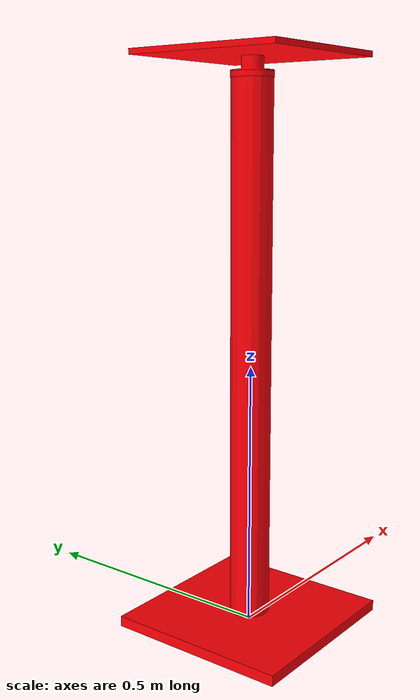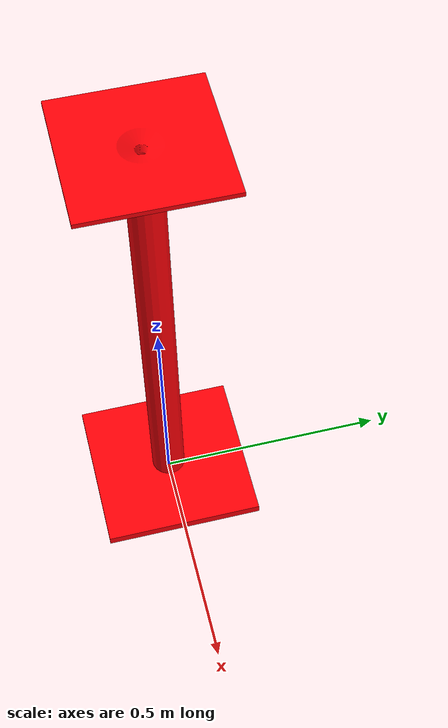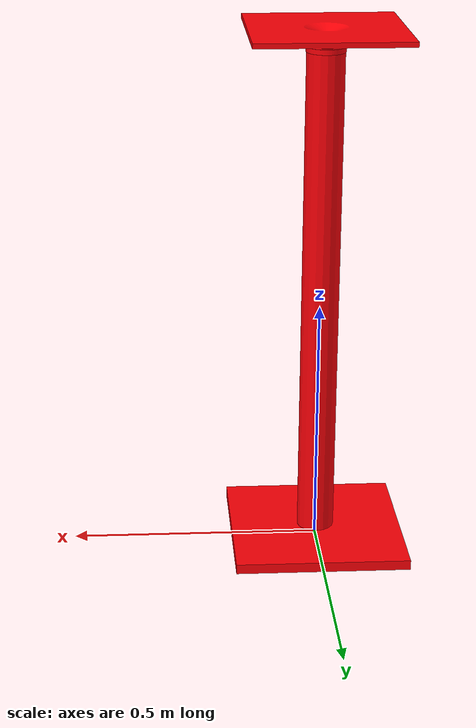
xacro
<?xml version="1.0"?>

<robot name="force_sensor" xmlns:xacro="http://ros.org/wiki/xacro">
  <xacro:property name="PI" value="3.14" />

  <!-- Included URDF Files -->
  <xacro:include filename="$(find mmuav_description)/urdf/multirotor_base.urdf.xacro" />

  <xacro:force_sensor>
    <origin xyz="0 0 0.02" rpy="${PI/2} 0 0"/>
  </xacro:force_sensor>

</robot>

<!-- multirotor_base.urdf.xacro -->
<robot xmlns:xacro="http://ros.org/wiki/xacro">
  <!-- Main multirotor link -->
  <xacro:macro name="multirotor_base_macro"
    params="robot_namespace mass body_width body_height mesh_file *origin *inertia">

    <link name="base_link"></link>
    <joint name="base_joint" type="fixed">
      <xacro:insert_block name="origin"/>
      <parent link="base_link" />
      <child link="base_link_inertia" />
    </joint>
    <link name="base_link_inertia">
      <inertial>
        <mass value="${mass}" />  <!-- [kg] -->
        <origin xyz="0 0 0" />
        <xacro:insert_block name="inertia" />
      </inertial>

      <visual>
        <origin xyz="0 0 0" rpy="0 0 0" />
        <geometry>
          <mesh filename="package://mmuav_description/meshes/${mesh_file}"
            scale="1 1 1" />
          <!--box size="${body_width} ${body_width} ${body_height}"/-->
        </geometry>
      </visual>

    </link>

    <!-- IMU -->
    <link name="imu_link">
      <inertial>
        <inertia ixx="0.00001" ixy="0.0" ixz="0.0" iyy="0.00001" iyz="0.0"
          izz="0.00001" />
        <mass value="0.01" />  <!-- [kg] -->
        <origin xyz="0 0 0" rpy="0 0 0" />
      </inertial>
    </link>
    <!-- IMU joint -->
    <joint name="imu_joint" type="revolute">
      <!--origin xyz="0 0 0" rpy="3.1416 0 0" / -->
      <parent link="base_link" />
      <child link="imu_link" />
      <limit upper="0" lower="0" effort="0" velocity="0" />
    </joint>

    <!-- attach multirotor_base_plugin to the base_link -->
    <gazebo>
      <plugin filename="librotors_gazebo_multirotor_base_plugin.so" name="rosbag">
        <robotNamespace>$(arg name)</robotNamespace>
        <linkName>base_link</linkName>
        <rotorVelocitySlowdownSim>${rotor_velocity_slowdown_sim}</rotorVelocitySlowdownSim>
      </plugin>
    </gazebo>
  </xacro:macro>

  <!-- Rotor joint and link -->
  <xacro:macro name="vertical_rotor"
    params="robot_namespace suffix direction motor_constant moment_constant parent mass_rotor radius_rotor time_constant_up time_constant_down max_rot_velocity motor_number rotor_drag_coefficient rolling_moment_coefficient color *origin *inertia">
    <joint name="rotor_${motor_number}_joint" type="continuous">
      <xacro:insert_block name="origin" />
      <axis xyz="0 0 1" />
      <!-- TODO(ff): not currently set because it's not yet supported -->
      <parent link="${parent}" />
      <child link="rotor_${motor_number}" />

    </joint>
    <!-- TODO(ff): not currently set because it's not yet supported -->
    <link name="rotor_${motor_number}">
      <inertial>
        <mass value="${mass_rotor}" /> <!-- [kg] -->
        <xacro:insert_block name="inertia" />
      </inertial>
      <visual>
        <geometry>

          <mesh filename="package://mmuav_description/meshes/propeller_${direction}.dae"
            scale="0.001 0.001 0.001" />
        </geometry>
      </visual>
      <collision>
        <geometry>
          <cylinder length="0.005" radius="${radius_rotor}" />
        </geometry>
      </collision>
    </link>
    <gazebo>
      <plugin name="${suffix}_motor_model" filename="librotors_gazebo_motor_model.so">
        <jointName>rotor_${motor_number}_joint</jointName>
        <linkName>rotor_${motor_number}</linkName>
        <turningDirection>${direction}</turningDirection>
        <timeConstantUp>${time_constant_up}</timeConstantUp>
        <timeConstantDown>${time_constant_down}</timeConstantDown>
        <maxRotVelocity>${max_rot_velocity}</maxRotVelocity>
        <motorConstant>${motor_constant}</motorConstant>
        <momentConstant>${moment_constant}</momentConstant>
        <commandTopic>${robot_namespace}/command/motors</commandTopic>
        <motorNumber>${motor_number}</motorNumber>
        <rotorDragCoefficient>${rotor_drag_coefficient}</rotorDragCoefficient>
        <rollingMomentCoefficient>${rolling_moment_coefficient}</rollingMomentCoefficient>
        <motorVelocityTopic>${robot_namespace}/motor_vel/${motor_number}</motorVelocityTopic>
        <rotorVelocitySlowdownSim>${rotor_velocity_slowdown_sim}</rotorVelocitySlowdownSim>
      </plugin>
    </gazebo>
    <gazebo reference="rotor_${motor_number}">
      <material>Gazebo/${color}</material>
    </gazebo>
  </xacro:macro>

  <xacro:macro name="transmisija" params="trans_number mechanical_reduction joint_name">
    <transmission name="transmission_${trans_number}">
      <type>transmission_interface/SimpleTransmission</type>
      <joint name="${joint_name}">
         <hardwareInterface>hardware_interface/EffortJointInterface</hardwareInterface>
      </joint>
      <actuator name="motor_${trans_number}">
        <hardwareInterface>hardware_interface/EffortJointInterface</hardwareInterface>
        <mechanicalReduction>${mechanical_reduction}</mechanicalReduction>
      </actuator>
    </transmission>
  </xacro:macro>

  <xacro:macro name="landing_gear" params="gear_num parent mass dim_x dim_y dim_z *origin *inertia">
    <joint name="land_gear_${gear_num}" type="fixed">
      <xacro:insert_block name="origin"/>
      <axis xyz="0 0 1"/>
      <parent link="${parent}"/>
      <child link="land_gear_${gear_num}"/>
    </joint>
    <link name="land_gear_${gear_num}">
      <visual>
        <origin rpy="0 0 0" xyz="0 0 0"/>
        <geometry>
          <box size="0.01 0.01 0.0001"/>
        </geometry>
      </visual>
      <collision>
        <origin rpy="0 0 0" xyz="0 0 0"/>
        <geometry>
          <box size="${dim_x} ${dim_y} ${dim_z}"/>
        </geometry>
      </collision>
      <inertial>
         <origin rpy="0 0 0" xyz="0 0 0"/>
        <mass value="${mass}"/>
        <xacro:insert_block name="inertia"/>
      </inertial>
    </link>

  </xacro:macro>

  <xacro:macro name="cam" params="camera_link camera_mass parent *origin *inertia">

    <!-- Camera link -->
    <link name="camera_box">

      <visual>
        <origin xyz="0 0 0" rpy="0 0 0"/>
        <geometry>
          <box size="${camera_link} ${camera_link} ${camera_link}"/>
        </geometry>
        <material name="red"/>
      </visual>

      <inertial>
        <mass value="${camera_mass}" />
        <origin xyz="0 0 0" rpy="0 0 0"/>
        <xacro:insert_block name="inertia"/>
      </inertial>

    </link>

    <!-- Camera joint with reference to the parent link -->
    <joint name="camera_joint" type="fixed">
      <xacro:insert_block name="origin"/>
      <parent link="${parent}"/>
      <child link="camera_box"/>
    </joint>

    <!-- camera -->
    <gazebo reference="camera_box">
      <sensor type="camera" name="camera1">
        <update_rate>30.0</update_rate>

        <camera name="head">
          <horizontal_fov>1.3962634</horizontal_fov>
          <image>
            <width>800</width>
            <height>800</height>
            <format>R8G8B8</format>
          </image>
          <clip>
            <near>0.02</near>
            <far>300</far>
          </clip>
          <noise>
            <type>gaussian</type>
            <mean>0.0</mean>
            <stddev>0.007</stddev>
          </noise>
        </camera>

        <plugin name="camera_controller" filename="libgazebo_ros_camera.so">
          <alwaysOn>true</alwaysOn>
          <updateRate>0.0</updateRate>
          <cameraName>morus/camera1</cameraName>
          <imageTopicName>image_raw</imageTopicName>
          <cameraInfoTopicName>camera_info</cameraInfoTopicName>
          <frameName>camera_box</frameName>
          <hackBaseline>0.07</hackBaseline>
          <distortionK1>0.0</distortionK1>
          <distortionK2>0.0</distortionK2>
          <distortionK3>0.0</distortionK3>
          <distortionT1>0.0</distortionT1>
          <distortionT2>0.0</distortionT2>
        </plugin>

      </sensor>
    </gazebo>

  </xacro:macro>

  <xacro:macro name="manipulator"
  params="parent suffix *axis *origin">
    <!--LINK1 manipulator2uav-->
    <link name='link_manipulator2uav_${suffix}'>

      <inertial>
        <mass value="0.022" />
        <origin rpy="0 0 0" xyz="0 -0.03190 0.00346"/>
        <inertia
          ixx="0.00001" ixy="0" ixz="0.0"
          iyx="0" iyy="0.00001" iyz="0"
          izx="0.0" izy="0" izz="0.00001"/>
      </inertial>

      <visual>
        <origin xyz="0 0 0" rpy="0 0 0" />
        <geometry>
          <mesh filename="package://mmuav_description/meshes/manipulator2uav.dae"
            scale="1 1 1" />
        </geometry>
      </visual>
    </link>
    <!--LINK1.2 dynamixel1-->
    <link name='link_dynamixel1_${suffix}'>
      <inertial>
        <mass value="0.055" />
        <origin rpy="0 0 0" xyz="0.01261097 0 0.00120978"/>
        <inertia
          ixx="0.00000885" ixy="0" ixz="0.00000024"
          iyx="0" iyy="0.00001597" iyz="0"
          izx="-0.00000024" izy="0" izz="0.00001335"/>
      </inertial>

      <visual>
        <origin xyz="0 0 0" rpy="0 0 0" />
        <geometry>
          <mesh filename="package://mmuav_description/meshes/AX12.dae"
            scale="1 1 1" />
        </geometry>
      </visual>
    </link>
    <!--LINK2 F3-->
    <link name='link_F3_${suffix}'>
      <inertial>
        <mass value="0.003" />
        <origin rpy="0 0 0" xyz="0.00000191 0.00240389 0"/>
        <inertia
          ixx="0.00000044" ixy="0" ixz="0.0"
          iyx="0" iyy="0.00000061" iyz="0"
          izx="0.0" izy="0" izz="0.00000019"/>
      </inertial>

      <visual>
        <origin xyz="0 0 0" rpy="0 0 0" />
        <geometry>
          <mesh filename="package://mmuav_description/meshes/F3.dae"
            scale="1 1 1" />
        </geometry>
      </visual>
    </link>
    <!--LINK2 F4-->
    <link name='link_F4_${suffix}'>
      <inertial>
        <mass value="0.014" />
        <origin rpy="0 0 0" xyz="0 -0.0304 -0.0086"/>
        <inertia
          ixx="0.00001183" ixy="0" ixz="0.0"
          iyx="0" iyy="0.00000252" iyz="-0.00000390"
          izx="0.0" izy="-0.00000390" izz="0.00001050"/>
      </inertial>

      <visual>
        <origin xyz="0 0 0" rpy="0 0 0" />
        <geometry>
          <mesh filename="package://mmuav_description/meshes/F4.dae"
            scale="1 1 1" />
        </geometry>
      </visual>
    </link>
    <!--LINK2 dynamixel2-->
    <link name='link_dynamixel2_${suffix}'>
      <inertial>
        <mass value="0.055" />
        <origin rpy="0 0 0" xyz="0.01261097 0 0.00120978"/>
        <inertia
          ixx="0.00000885" ixy="0" ixz="0.00000024"
          iyx="0" iyy="0.00001597" iyz="0"
          izx="-0.00000024" izy="0" izz="0.00001335"/>
      </inertial>

      <visual>
        <origin xyz="0 0 0" rpy="0 0 0" />
        <geometry>
          <mesh filename="package://mmuav_description/meshes/AX12.dae"
            scale="1 1 1" />
        </geometry>
      </visual>
    </link>
    <!--LINK2 gripper 1-->
    <link name='link_gripper1_${suffix}'>
      <inertial>
        <mass value="0.010" />
        <origin rpy="0 0 0" xyz="0.00028510 0.00103830 0.00134070"/>
        <inertia
          ixx="0.00000114" ixy="0" ixz="0.0"
          iyx="0" iyy="0.00000156" iyz="0"
          izx="0.0" izy="0" izz="0.00000125"/>
      </inertial>

      <visual>
        <origin xyz="0 0 0" rpy="0 0 0" />
        <geometry>
          <mesh filename="package://mmuav_description/meshes/gripper_part1.dae"
            scale="1 1 1" />
        </geometry>
      </visual>
    </link>
    <!--LINK3 gripper 2-->
    <link name='link_gripper2_${suffix}'>
      <inertial>
        <mass value="0.015" />
        <origin rpy="0 0 0" xyz="0.005537 0.00103806 0.00134058"/>
        <inertia
          ixx="0.00000281" ixy="0" ixz="0.0"
          iyx="0" iyy="0.00000248" iyz="0"
          izx="0.0" izy="0" izz="0.00000391"/>
      </inertial>

      <visual>
        <origin xyz="0.02047 -0.00104 0.00135" rpy="0 0 0" />
        <geometry>
          <mesh filename="package://mmuav_description/meshes/gripper_part2.dae"
            scale="1 1 1" />
        </geometry>
      </visual>

    </link>

    <!--JOINT1 FIXED manipulator2uav-->
    <joint name="joint_manipulator2uav_${suffix}" type="fixed">
        <xacro:insert_block name="origin"/>
        <parent link="${parent}"/>
        <child link="link_manipulator2uav_${suffix}"/>
    </joint>
    <!--JOINT1 CONTINOUS dynamixel1-->
    <joint name="joint_dynamixel1_${suffix}" type="revolute">
      <parent link="link_manipulator2uav_${suffix}"/>
      <child link="link_dynamixel1_${suffix}"/>
      <origin xyz="0 0 0" rpy="${PI} 0 ${-PI/2}" />
      <limit upper="6" lower="-6" effort="1.5" velocity="1"/>
      <axis xyz="0 0 1" />
    </joint>
    <!--JOINT2 FIXED F3-->
    <joint name="joint_F3_${suffix}" type="fixed">
        <origin xyz="0.04150716806 0 0" rpy="0 0 ${PI/2}" />
        <parent link="link_dynamixel1_${suffix}"/>
        <child link="link_F3_${suffix}"/>
    </joint>
    <!--JOINT2 FIXED F4-->
    <joint name="joint_F4_${suffix}" type="fixed">
        <origin xyz="0 -0.05249560744 0" rpy="0 0 ${PI}" />
        <parent link="link_F3_${suffix}"/>
        <child link="link_F4_${suffix}"/>
    </joint>
    <!--JOINT2 CONTINOUS dynamixel2-->
    <joint name="joint_dynamixel2_${suffix}" type="revolute">
      <parent link="link_F4_${suffix}"/>
      <child link="link_dynamixel2_${suffix}"/>
      <origin xyz="0 0 0" rpy="0 0 ${-PI/2}" />
      <limit upper="6" lower="-6" effort="0.3" velocity="0.1"/>
      <axis xyz="0 0 1" />
    </joint>
    <!--JOINT2 FIXED gripper part1-->
    <joint name="joint_gripper1_${suffix}" type="fixed">
        <origin xyz="0.04842 -0.00104 -0.00134" rpy="0 0 0" />
        <parent link="link_dynamixel2_${suffix}"/>
        <child link="link_gripper1_${suffix}"/>
    </joint>
    <!--JOINT3 CONTINOUS gripper-->
    <joint name="joint_gripper2_${suffix}" type="revolute">
      <parent link="link_gripper1_${suffix}"/>
      <child link="link_gripper2_${suffix}"/>
      <origin xyz="0.01265 0.00104 -0.00134" rpy="0 0 ${PI}" />
      <limit upper="6" lower="-6" effort="0.05" velocity="0.01"/>
      <axis xyz="0 0 1" />
    </joint>

  </xacro:macro>

  <xacro:macro name="force_sensor"
    params="*origin">

    <link name="world"></link>

    <!--LINK1 force sensor stand-->
    <link name='link_force_sensor_stand'>

      <inertial>
        <mass value="2.0" />
        <origin rpy="0 0 0" xyz="0 0.46818651 0"/>
        <inertia
          ixx="0.23434322" ixy="0" ixz="0.0"
          iyx="0" iyy="0.01547123" iyz="0"
          izx="0.0" izy="0" izz="0.23434322"/>
      </inertial>

      <visual>
        <origin xyz="0 0 0" rpy="0 0 0" />
        <geometry>
          <mesh filename="package://mmuav_description/meshes/forcesensor_stand.dae"
            scale="1 1 1" />
        </geometry>
      </visual>

      <collision name='collision'>
        <origin xyz="0 0 0" rpy="0 0 0"/>
        <geometry>
          <mesh filename="package://mmuav_description/meshes/forcesensor_stand.dae"
            scale="1 1 1" />
        </geometry>
      </collision>
    </link>
    <!--LINK2 force sensor mount bottom-->
    <link name='link_force_sensor_bottom_mount'>

      <inertial>
        <mass value="0.05" />
        <origin rpy="0 0 0" xyz="0.0 0.00206111 0.0"/>
        <inertia
          ixx="0.00002139" ixy="0" ixz="0.0"
          iyx="0" iyy="0.00004241" iyz="0"
          izx="0.0" izy="0" izz="0.00002139"/>
      </inertial>

      <visual>
        <origin xyz="0 0 0" rpy="0 0 0" />
        <geometry>
          <mesh filename="package://mmuav_description/meshes/forcesensor_mount_bottom.dae"
            scale="1 1 1" />
        </geometry>
      </visual>

      <collision name='collision'>
        <origin xyz="0 0 0" rpy="0 0 0"/>
        <geometry>
          <mesh filename="package://mmuav_description/meshes/forcesensor_mount_bottom.dae"
            scale="1 1 1" />
        </geometry>
      </collision>
    </link>
    <!--LINK2 force sensor mount top-->
    <link name='link_force_sensor_top_mount'>

      <inertial>
        <mass value="0.080" />
        <origin rpy="0 0 0" xyz="0 0 -0.02998408"/>
        <inertia
          ixx="0.00059994" ixy="0" ixz="0.0"
          iyx="0" iyy="0.00059994" iyz="0"
          izx="0.0" izy="0" izz="0.00119615"/>
      </inertial>

      <visual>
        <origin xyz="-0.01903 -0.01661 -0.05153" rpy="0 0 0" />
        <geometry>
          <mesh filename="package://mmuav_description/meshes/forcesensor_mount_top.dae"
            scale="1 1 1" />
        </geometry>
      </visual>

      <collision name='collision'>
        <origin xyz="-0.01903 -0.01661 -0.05153" rpy="0 0 0"/>
        <geometry>
          <mesh filename="package://mmuav_description/meshes/forcesensor_mount_top.dae"
            scale="1 1 1" />
        </geometry>
      </collision>
    </link>
    <!--JOINT1 FIXED force_sensor_stand-->
    <joint name="joint_force_sensor_stand" type="fixed">
        <xacro:insert_block name="origin"/>
        <parent link="world"/>
        <child link="link_force_sensor_stand"/>
    </joint>
    <!--JOINT2 FIXED joint_force_sensor_mount_bottom-->
    <joint name="joint_force_sensor_mount_bottom" type="fixed">
        <origin xyz="0 1.003 0" rpy="${PI} 0 0" />
        <parent link="link_force_sensor_stand"/>
        <child link="link_force_sensor_bottom_mount"/>
    </joint>
    <!--JOINT2 FIXED force_sensor_mount_top-->
    <joint name="joint_force_sensor_mount_top" type="prismatic">
        <origin xyz="0 0 0" rpy="${-PI/2} 0 0" />
        <parent link="link_force_sensor_bottom_mount"/>
        <child link="link_force_sensor_top_mount"/>
        <axis xyz="0 0 1" />
        <limit effort="0" velocity="0" lower="0" upper="0" />
    </joint>
  </xacro:macro>

<xacro:macro name="screw"
    params="*origin">

    <link name="base_link"></link>

    <!--LINK1 force sensor stand-->
    <link name='link_screw'>

      <inertial>
        <mass value="0.5" />
        <origin rpy="0 0 0" xyz="0.02100388 0.01819119 0.05027511"/>
        <inertia
          ixx="0.00020051" ixy="0" ixz="-0.00000019"
          iyx="0" iyy="0.00020054" iyz="0.00000001"
          izx="-0.00000019" izy="0.00000001" izz="0.00006377"/>
      </inertial>

      <visual>
        <origin xyz="0 0 0" rpy="0 0 0" />
        <geometry>
          <mesh filename="package://mmuav_description/meshes/screw.dae"
            scale="1 1 1" />
        </geometry>
      </visual>

      <collision name='collision'>
        <origin xyz="0 0 0" rpy="0 0 0"/>
        <geometry>
          <mesh filename="package://mmuav_description/meshes/screw.dae"
            scale="1 1 1" />
        </geometry>
      </collision>
    </link>

    <!--JOINT1 FIXED force_sensor_stand-->
    <joint name="joint_screw" type="fixed">
        <xacro:insert_block name="origin"/>
        <parent link="base_link"/>
        <child link="link_screw"/>
    </joint>

  </xacro:macro>

  <!-- Definition of movable mass macro -->
  <xacro:macro name="movable_mass" params="mass_number parent mass dimension path_len color x_axis y_axis z_axis orientation *origin *inertia">
    <joint name="stick_to_movable_mass_${mass_number}" type="prismatic">
      <xacro:insert_block name="origin"/>
      <axis xyz="${x_axis} ${y_axis} ${z_axis}"/>
      <parent link="${parent}"/>
      <child link="movable_mass_${mass_number}"/>
      <limit lower="${-path_len/2}" upper="${path_len/2}" effort="10000" velocity="20"/>
      <dynamics damping="10" />
    </joint>
    <link name="movable_mass_${mass_number}">
      <visual>
        <origin rpy="0 0 ${orientation}" xyz="0 0 ${0*dimension/2}"/>
        <geometry>
          <box size="${1*dimension} ${1*dimension} ${1*dimension}"/>
        </geometry>
      </visual>
      <collision>
        <origin rpy="0 0 0" xyz="0 0 ${0*dimension/2}"/>
        <geometry>
          <box size="${1*dimension} ${1*dimension} ${1*dimension}"/>
        </geometry>
      </collision>
      <inertial>
        <origin rpy="0 0 0" xyz="0 0 ${0*dimension/2}"/>
        <mass value="${mass}"/>
        <xacro:insert_block name="inertia"/>
      </inertial>
    </link>

    <gazebo reference="movable_mass_${mass_number}">
      <material>Gazebo/${color}</material>
    </gazebo>
  </xacro:macro>

</robot>
